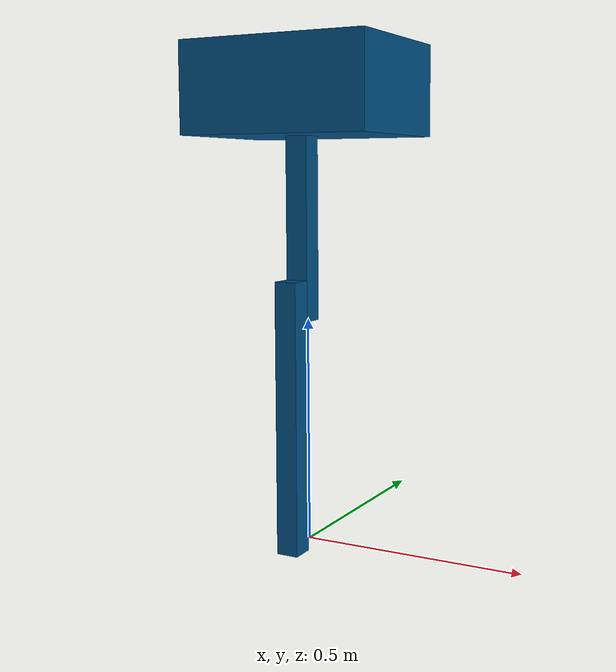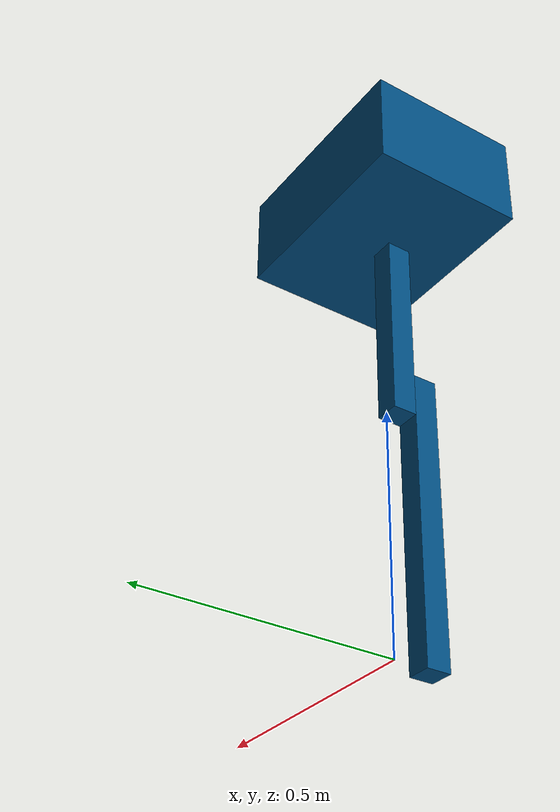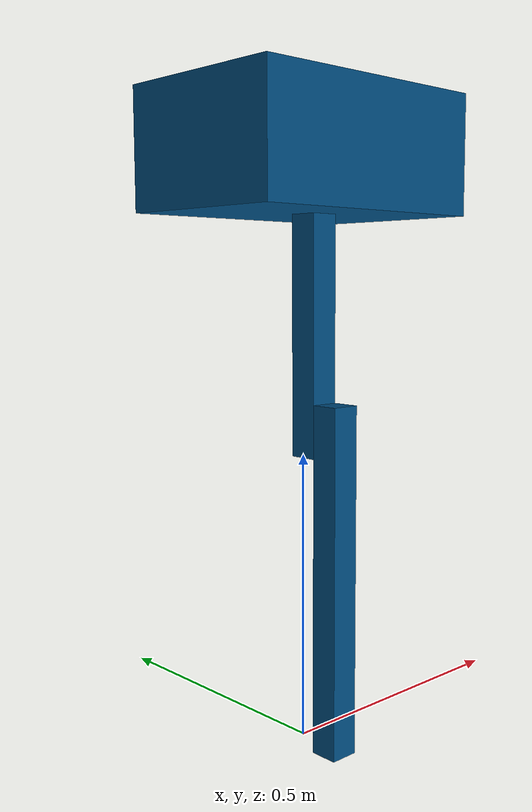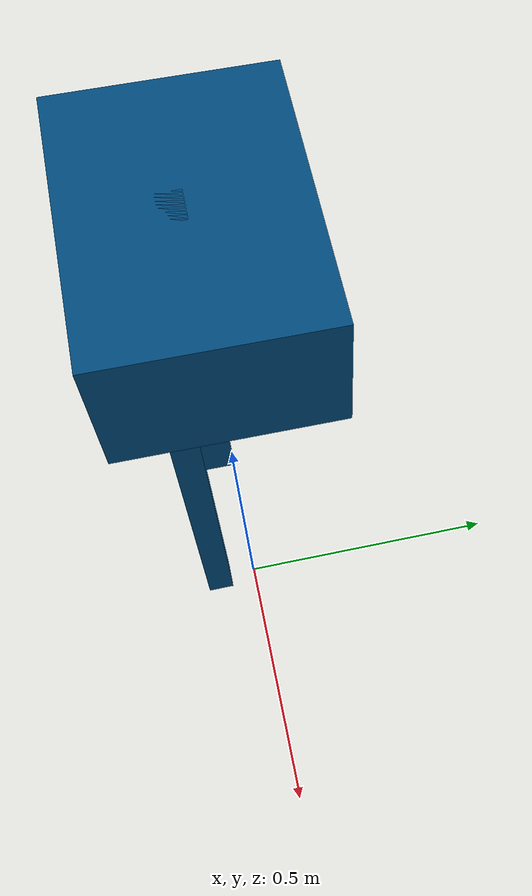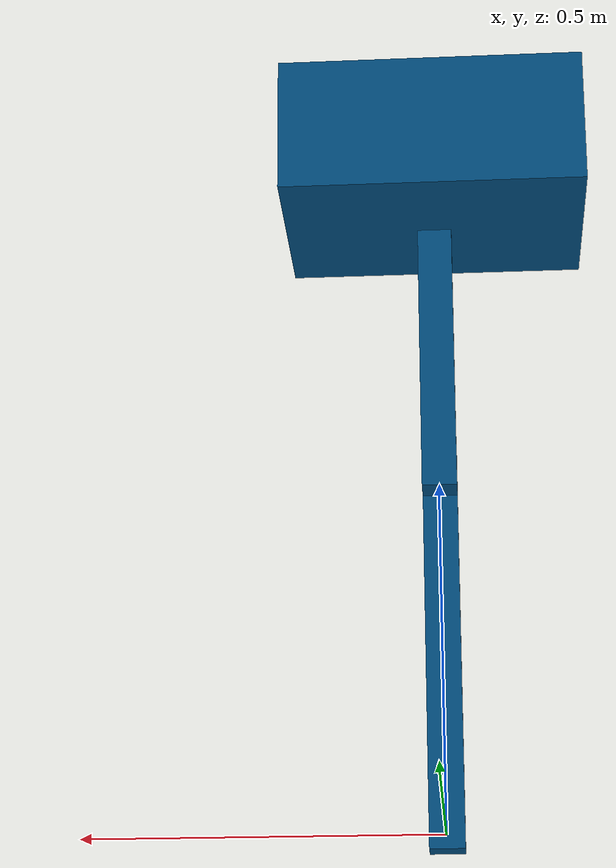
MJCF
<mujoco model="robot">
  <option apirate="2000"/>
  <default>
    <default class="robot/"/>
    </default>
  <worldbody>
    <body name="body_chassis_" pos="0 0 1" euler="0 0 0">
      <camera name="camera_track_chassis_" class="robot/" mode="track" pos="0 -3 1" zaxis="0 -1 0.5"/>
      <geom name="geom_chassis_" class="robot/" type="box" size="0.22 0.16 0.10000000000000001" rgba="0 0.29999999999999999 0.5 1" mass="15"/>
      <site name="right_site_chassis_" class="robot/" size="9.9999999999999995e-07 9.9999999999999995e-07 9.9999999999999995e-07" pos="0 -0.16 0"/>
      <body pos="0 0 0" name="right_upper_link/">
        <body name="right_upper_link/body_link_right_upper">
          <geom name="right_upper_link/geom_link_right_upper" class="robot/" type="box" size="0.025000000000000001 0.025000000000000001 0.3" rgba="0 0.29999999999999999 0.5 1" mass="2" pos="0 -0.025000000000000001 -0.20000000000000001"/>
          <joint name="right_upper_link/joint_link_right_upper" class="robot/" type="hinge" axis="0 1 0" ref="20.0" armature="0.010901249999999999" damping="0.073900000000000001" frictionloss="0.13339999999999999" range="-60 60"/>
          <site name="right_upper_link/link_out_site_right_upper" class="robot/" size="9.9999999999999995e-07 9.9999999999999995e-07 9.9999999999999995e-07" pos="0 -0.050000000000000003 -0.40000000000000002"/>
          <body pos="0 -0.050000000000000003 -0.51" name="right_upper_link/right_down_link/">
            <body name="right_upper_link/right_down_link/body_link_right_down">
              <geom name="right_upper_link/right_down_link/geom_link_right_down" class="robot/" type="box" size="0.025000000000000001 0.025000000000000001 0.3" rgba="0 0.29999999999999999 0.5 1" mass="2" pos="0 -0.025000000000000001 -0.20000000000000001"/>
              <joint name="right_upper_link/right_down_link/joint_link_right_down" class="robot/" type="hinge" axis="0 1 0" ref="100.0" armature="0.010901249999999999" damping="0.023900000000000001" range="-70 70" frictionloss="0.13339999999999999" stiffness="500.0"/>
              <site name="right_upper_link/right_down_link/link_out_site_right_down" class="robot/" size="9.9999999999999995e-07 9.9999999999999995e-07 9.9999999999999995e-07" pos="0 -0.050000000000000003 -0.40000000000000002"/>
              <body pos="0 -0.050000000000000003 -0.40000000000000002" name="right_upper_link/right_down_link/right_tire/">
              </body>
            </body>
          </body>
        </body>
      </body>
      <joint name="free_floating_chassis_" class="robot/" type="slide" axis="0 0 1" ref="0.0"/>
      <site name="imu" class="robot/" size="9.9999999999999995e-07 9.9999999999999995e-07 9.9999999999999995e-07" pos="0 0 0"/>
    </body>
    <light name="spotlight_0" class="robot/" mode="targetbodycom" target="body_chassis_" pos="0.25 0.19 0.15000000000000002"/>
    <light name="spotlight_1" class="robot/" mode="targetbodycom" target="body_chassis_" pos="0.25 -0.19 0.15000000000000002"/>
    <light name="spotlight_2" class="robot/" mode="targetbodycom" target="body_chassis_" pos="-0.25 0.19 0.15000000000000002"/>
    <light name="spotlight_3" class="robot/" mode="targetbodycom" target="body_chassis_" pos="-0.25 -0.19 0.15000000000000002"/>
  </worldbody>
  <actuator>
    <motor name="my_motor" joint="right_upper_link/joint_link_right_upper" gear="100" forcelimited="true" forcerange="-10 10"/>
    <motor name="my_motor1" joint="right_upper_link/right_down_link/joint_link_right_down" forcelimited="true" forcerange="-10 10" gear="500"/>
  </actuator>
  <sensor>
    <jointpos name="rbody_chassi_/pos" joint="free_floating_chassis_"/>
    <jointvel name="rbody_chassi_/vel" joint="free_floating_chassis_"/>
    <jointpos name="right_upper_link/pos" joint="right_upper_link/joint_link_right_upper"/>
    <jointvel name="right_upper_link/vel" joint="right_upper_link/joint_link_right_upper"/>
    <jointpos name="right_upper_link/right_down_link/pos" joint="right_upper_link/right_down_link/joint_link_right_down"/>
    <jointvel name="right_upper_link/right_down_link/vel" joint="right_upper_link/right_down_link/joint_link_right_down"/>
  </sensor>
  </mujoco>
